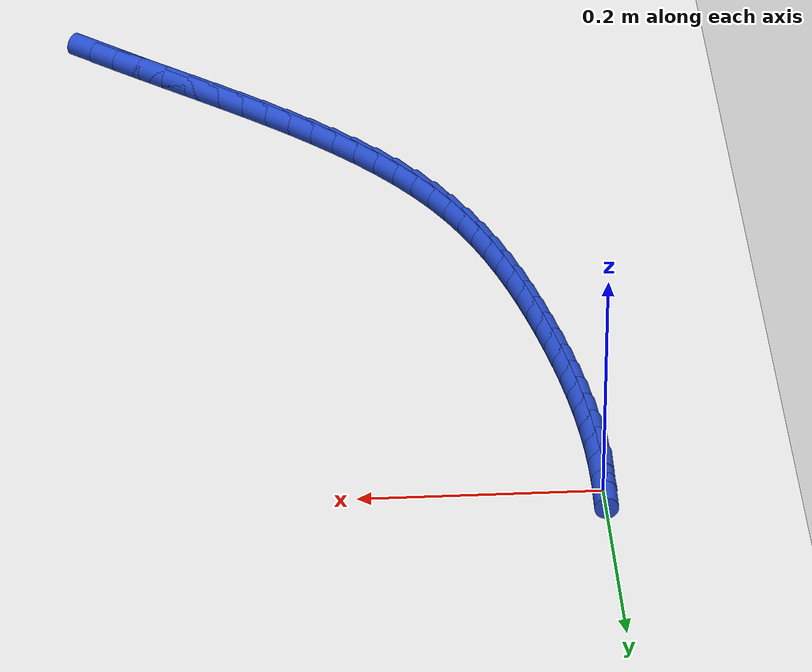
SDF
<sdf version="1.6">
 <world name="default">
  <model name="ground_plane">
   <static>1</static>
   <link name="link">
    <collision name="collision">
     <geometry><plane><normal>0 0 1</normal><size>100 100</size></plane></geometry>
     <surface><friction><ode><mu>100</mu><mu2>50</mu2></ode></friction></surface>
    </collision>
    <visual name="visual">
     <cast_shadows>0</cast_shadows>
     <geometry><plane><normal>0 0 1</normal><size>100 100</size></plane></geometry>
     <material>
      <script><uri>file://media/materials/scripts/gazebo.material</uri><name>Gazebo/WhiteGlow</name></script>
     </material>
    </visual>
   </link>
  </model>
  <model name="line">
   <link name="link_0">
    <pose>-3.122502256758253e-17 4.163336342344337e-17 0.01 0 1.57 1.5473795753118187</pose>
    <collision name="collision">
     <geometry><cylinder><radius>0.01</radius><length>0.08</length></cylinder></geometry>
    </collision>
    <visual name="visual">
     <material>
      <script><name>Gazebo/Blue</name><uri>file://media/materials/scripts/gazebo.material</uri></script>
     </material>
     <geometry><cylinder><radius>0.01</radius><length>0.08</length></cylinder></geometry>
    </visual>
   </link>
   <link name="link_237">
    <pose>0.37873400418145226 -0.706046920443959 0.01 0 1.57 -0.685440117548606</pose>
    <collision name="collision">
     <geometry><cylinder><radius>0.01</radius><length>0.08</length></cylinder></geometry>
    </collision>
    <visual name="visual">
     <material>
      <script><name>Gazebo/Blue</name><uri>file://media/materials/scripts/gazebo.material</uri></script>
     </material>
     <geometry><cylinder><radius>0.01</radius><length>0.08</length></cylinder></geometry>
    </visual>
   </link>
   <link name="link_238">
    <pose>0.35909890715028037 -0.6899913249075883 0.01 0 1.57 -0.6745439767476813</pose>
    <collision name="collision">
     <geometry><cylinder><radius>0.01</radius><length>0.08</length></cylinder></geometry>
    </collision>
    <visual name="visual">
     <material>
      <script><name>Gazebo/Blue</name><uri>file://media/materials/scripts/gazebo.material</uri></script>
     </material>
     <geometry><cylinder><radius>0.01</radius><length>0.08</length></cylinder></geometry>
    </visual>
   </link>
   <link name="link_239">
    <pose>0.3391303455874917 -0.6740229249534682 0.01 0 1.57 -0.668742053999004</pose>
    <collision name="collision">
     <geometry><cylinder><radius>0.01</radius><length>0.08</length></cylinder></geometry>
    </collision>
    <visual name="visual">
     <material>
      <script><name>Gazebo/Blue</name><uri>file://media/materials/scripts/gazebo.material</uri></script>
     </material>
     <geometry><cylinder><radius>0.01</radius><length>0.08</length></cylinder></geometry>
    </visual>
   </link>
   <link name="link_240">
    <pose>0.318945692533712 -0.6580728365964814 0.01 0 1.57 -0.6679180554532834</pose>
    <collision name="collision">
     <geometry><cylinder><radius>0.01</radius><length>0.08</length></cylinder></geometry>
    </collision>
    <visual name="visual">
     <material>
      <script><name>Gazebo/Blue</name><uri>file://media/materials/scripts/gazebo.material</uri></script>
     </material>
     <geometry><cylinder><radius>0.01</radius><length>0.08</length></cylinder></geometry>
    </visual>
   </link>
   <link name="link_241">
    <pose>0.2986632171531656 -0.6420725791832987 0.01 0 1.57 -0.6720050172778176</pose>
    <collision name="collision">
     <geometry><cylinder><radius>0.01</radius><length>0.08</length></cylinder></geometry>
    </collision>
    <visual name="visual">
     <material>
      <script><name>Gazebo/Blue</name><uri>file://media/materials/scripts/gazebo.material</uri></script>
     </material>
     <geometry><cylinder><radius>0.01</radius><length>0.08</length></cylinder></geometry>
    </visual>
   </link>
   <link name="link_242">
    <pose>0.2784011886100742 -0.6259536720605883 0.01 0 1.57 -0.6809934705254129</pose>
    <collision name="collision">
     <geometry><cylinder><radius>0.01</radius><length>0.08</length></cylinder></geometry>
    </collision>
    <visual name="visual">
     <material>
      <script><name>Gazebo/Blue</name><uri>file://media/materials/scripts/gazebo.material</uri></script>
     </material>
     <geometry><cylinder><radius>0.01</radius><length>0.08</length></cylinder></geometry>
    </visual>
   </link>
   <link name="link_243">
    <pose>0.2582778760686621 -0.6096476345750208 0.01 0 1.57 -0.6949276472716482</pose>
    <collision name="collision">
     <geometry><cylinder><radius>0.01</radius><length>0.08</length></cylinder></geometry>
    </collision>
    <visual name="visual">
     <material>
      <script><name>Gazebo/Blue</name><uri>file://media/materials/scripts/gazebo.material</uri></script>
     </material>
     <geometry><cylinder><radius>0.01</radius><length>0.08</length></cylinder></geometry>
    </visual>
   </link>
   <link name="link_244">
    <pose>0.23841154869315115 -0.5930859860732655 0.01 0 1.57 -0.7138995466185428</pose>
    <collision name="collision">
     <geometry><cylinder><radius>0.01</radius><length>0.08</length></cylinder></geometry>
    </collision>
    <visual name="visual">
     <material>
      <script><name>Gazebo/Blue</name><uri>file://media/materials/scripts/gazebo.material</uri></script>
     </material>
     <geometry><cylinder><radius>0.01</radius><length>0.08</length></cylinder></geometry>
    </visual>
   </link>
   <link name="link_245">
    <pose>0.21892047564776557 -0.5762002459019921 0.01 0 1.57 -0.738040182673189</pose>
    <collision name="collision">
     <geometry><cylinder><radius>0.01</radius><length>0.08</length></cylinder></geometry>
    </collision>
    <visual name="visual">
     <material>
      <script><name>Gazebo/Blue</name><uri>file://media/materials/scripts/gazebo.material</uri></script>
     </material>
     <geometry><cylinder><radius>0.01</radius><length>0.08</length></cylinder></geometry>
    </visual>
   </link>
   <link name="link_246">
    <pose>0.1999229260967278 -0.5589219334078704 0.01 0 1.57 -0.7675069450600549</pose>
    <collision name="collision">
     <geometry><cylinder><radius>0.01</radius><length>0.08</length></cylinder></geometry>
    </collision>
    <visual name="visual">
     <material>
      <script><name>Gazebo/Blue</name><uri>file://media/materials/scripts/gazebo.material</uri></script>
     </material>
     <geometry><cylinder><radius>0.01</radius><length>0.08</length></cylinder></geometry>
    </visual>
   </link>
   <link name="link_247">
    <pose>0.18153716920426033 -0.541182567937569 0.01 0 1.57 -0.8024657044747607</pose>
    <collision name="collision">
     <geometry><cylinder><radius>0.01</radius><length>0.08</length></cylinder></geometry>
    </collision>
    <visual name="visual">
     <material>
      <script><name>Gazebo/Blue</name><uri>file://media/materials/scripts/gazebo.material</uri></script>
     </material>
     <geometry><cylinder><radius>0.01</radius><length>0.08</length></cylinder></geometry>
    </visual>
   </link>
   <link name="link_248">
    <pose>0.16388147413458723 -0.5229136688377589 0.01 0 1.57 -0.8430662048747827</pose>
    <collision name="collision">
     <geometry><cylinder><radius>0.01</radius><length>0.08</length></cylinder></geometry>
    </collision>
    <visual name="visual">
     <material>
      <script><name>Gazebo/Blue</name><uri>file://media/materials/scripts/gazebo.material</uri></script>
     </material>
     <geometry><cylinder><radius>0.01</radius><length>0.08</length></cylinder></geometry>
    </visual>
   </link>
   <link name="link_249">
    <pose>0.14707411005193058 -0.5040467554551082 0.01 0 1.57 -0.8894096044088652</pose>
    <collision name="collision">
     <geometry><cylinder><radius>0.01</radius><length>0.08</length></cylinder></geometry>
    </collision>
    <visual name="visual">
     <material>
      <script><name>Gazebo/Blue</name><uri>file://media/materials/scripts/gazebo.material</uri></script>
     </material>
     <geometry><cylinder><radius>0.01</radius><length>0.08</length></cylinder></geometry>
    </visual>
   </link>
   <link name="link_250">
    <pose>0.13123334612051438 -0.48451334713628813 0.01 0 1.57 -0.9415080468297321</pose>
    <collision name="collision">
     <geometry><cylinder><radius>0.01</radius><length>0.08</length></cylinder></geometry>
    </collision>
    <visual name="visual">
     <material>
      <script><name>Gazebo/Blue</name><uri>file://media/materials/scripts/gazebo.material</uri></script>
     </material>
     <geometry><cylinder><radius>0.01</radius><length>0.08</length></cylinder></geometry>
    </visual>
   </link>
   <link name="link_251">
    <pose>0.11647745150456068 -0.4642449632279667 0.01 0 1.57 -0.9992058292563114</pose>
    <collision name="collision">
     <geometry><cylinder><radius>0.01</radius><length>0.08</length></cylinder></geometry>
    </collision>
    <visual name="visual">
     <material>
      <script><name>Gazebo/Blue</name><uri>file://media/materials/scripts/gazebo.material</uri></script>
     </material>
     <geometry><cylinder><radius>0.01</radius><length>0.08</length></cylinder></geometry>
    </visual>
   </link>
   <link name="link_252">
    <pose>0.10292404528011699 -0.4431736094594853 0.01 0 1.57 -1.058780307226886</pose>
    <collision name="collision">
     <geometry><cylinder><radius>0.01</radius><length>0.08</length></cylinder></geometry>
    </collision>
    <visual name="visual">
     <material>
      <script><name>Gazebo/Blue</name><uri>file://media/materials/scripts/gazebo.material</uri></script>
     </material>
     <geometry><cylinder><radius>0.01</radius><length>0.08</length></cylinder></geometry>
    </visual>
   </link>
   <link name="link_253">
    <pose>0.0906214247004763 -0.4212831567293772 0.01 0 1.57 -1.1135622587383174</pose>
    <collision name="collision">
     <geometry><cylinder><radius>0.01</radius><length>0.08</length></cylinder></geometry>
    </collision>
    <visual name="visual">
     <material>
      <script><name>Gazebo/Blue</name><uri>file://media/materials/scripts/gazebo.material</uri></script>
     </material>
     <geometry><cylinder><radius>0.01</radius><length>0.08</length></cylinder></geometry>
    </visual>
   </link>
   <link name="link_254">
    <pose>0.07948800535496342 -0.3986546507392864 0.01 0 1.57 -1.1628176639036965</pose>
    <collision name="collision">
     <geometry><cylinder><radius>0.01</radius><length>0.08</length></cylinder></geometry>
    </collision>
    <visual name="visual">
     <material>
      <script><name>Gazebo/Blue</name><uri>file://media/materials/scripts/gazebo.material</uri></script>
     </material>
     <geometry><cylinder><radius>0.01</radius><length>0.08</length></cylinder></geometry>
    </visual>
   </link>
   <link name="link_255">
    <pose>0.06942792269661087 -0.37537982129660086 0.01 0 1.57 -1.2066438580516954</pose>
    <collision name="collision">
     <geometry><cylinder><radius>0.01</radius><length>0.08</length></cylinder></geometry>
    </collision>
    <visual name="visual">
     <material>
      <script><name>Gazebo/Blue</name><uri>file://media/materials/scripts/gazebo.material</uri></script>
     </material>
     <geometry><cylinder><radius>0.01</radius><length>0.08</length></cylinder></geometry>
    </visual>
   </link>
   <link name="link_256">
    <pose>0.060345312178452404 -0.3515503982087111 0.01 0 1.57 -1.24521340294864</pose>
    <collision name="collision">
     <geometry><cylinder><radius>0.01</radius><length>0.08</length></cylinder></geometry>
    </collision>
    <visual name="visual">
     <material>
      <script><name>Gazebo/Blue</name><uri>file://media/materials/scripts/gazebo.material</uri></script>
     </material>
     <geometry><cylinder><radius>0.01</radius><length>0.08</length></cylinder></geometry>
    </visual>
   </link>
   <link name="link_257">
    <pose>0.05214430925352089 -0.32725811128300614 0.01 0 1.57 -1.2787357837856488</pose>
    <collision name="collision">
     <geometry><cylinder><radius>0.01</radius><length>0.08</length></cylinder></geometry>
    </collision>
    <visual name="visual">
     <material>
      <script><name>Gazebo/Blue</name><uri>file://media/materials/scripts/gazebo.material</uri></script>
     </material>
     <geometry><cylinder><radius>0.01</radius><length>0.08</length></cylinder></geometry>
    </visual>
   </link>
   <link name="link_258">
    <pose>0.04472904937484927 -0.3025946903268741 0.01 0 1.57 -1.3074276116221875</pose>
    <collision name="collision">
     <geometry><cylinder><radius>0.01</radius><length>0.08</length></cylinder></geometry>
    </collision>
    <visual name="visual">
     <material>
      <script><name>Gazebo/Blue</name><uri>file://media/materials/scripts/gazebo.material</uri></script>
     </material>
     <geometry><cylinder><radius>0.01</radius><length>0.08</length></cylinder></geometry>
    </visual>
   </link>
   <link name="link_259">
    <pose>0.03800366799547117 -0.2776518651477064 0.01 0 1.57 -1.331490465383474</pose>
    <collision name="collision">
     <geometry><cylinder><radius>0.01</radius><length>0.08</length></cylinder></geometry>
    </collision>
    <visual name="visual">
     <material>
      <script><name>Gazebo/Blue</name><uri>file://media/materials/scripts/gazebo.material</uri></script>
     </material>
     <geometry><cylinder><radius>0.01</radius><length>0.08</length></cylinder></geometry>
    </visual>
   </link>
   <link name="link_260">
    <pose>0.031872300568419325 -0.2525213655528905 0.01 0 1.57 -1.351097074494853</pose>
    <collision name="collision">
     <geometry><cylinder><radius>0.01</radius><length>0.08</length></cylinder></geometry>
    </collision>
    <visual name="visual">
     <material>
      <script><name>Gazebo/Blue</name><uri>file://media/materials/scripts/gazebo.material</uri></script>
     </material>
     <geometry><cylinder><radius>0.01</radius><length>0.08</length></cylinder></geometry>
    </visual>
   </link>
   <link name="link_261">
    <pose>0.02623913595579015 -0.22729488823280655 0.01 0 1.57 -1.367822472763316</pose>
    <collision name="collision">
     <geometry><cylinder><radius>0.01</radius><length>0.08</length></cylinder></geometry>
    </collision>
    <visual name="visual">
     <material>
      <script><name>Gazebo/Blue</name><uri>file://media/materials/scripts/gazebo.material</uri></script>
     </material>
     <geometry><cylinder><radius>0.01</radius><length>0.08</length></cylinder></geometry>
    </visual>
   </link>
   <link name="link_262">
    <pose>0.021042135108938174 -0.20204318903780993 0.01 0 1.57 -1.3856577391379956</pose>
    <collision name="collision">
     <geometry><cylinder><radius>0.01</radius><length>0.08</length></cylinder></geometry>
    </collision>
    <visual name="visual">
     <material>
      <script><name>Gazebo/Blue</name><uri>file://media/materials/scripts/gazebo.material</uri></script>
     </material>
     <geometry><cylinder><radius>0.01</radius><length>0.08</length></cylinder></geometry>
    </visual>
   </link>
   <link name="link_263">
    <pose>0.016310810063600256 -0.1767802563320316 0.01 0 1.57 -1.4052951174645578</pose>
    <collision name="collision">
     <geometry><cylinder><radius>0.01</radius><length>0.08</length></cylinder></geometry>
    </collision>
    <visual name="visual">
     <material>
      <script><name>Gazebo/Blue</name><uri>file://media/materials/scripts/gazebo.material</uri></script>
     </material>
     <geometry><cylinder><radius>0.01</radius><length>0.08</length></cylinder></geometry>
    </visual>
   </link>
   <link name="link_264">
    <pose>0.01209003632943536 -0.15151055215011675 0.01 0 1.57 -1.4267648347146618</pose>
    <collision name="collision">
     <geometry><cylinder><radius>0.01</radius><length>0.08</length></cylinder></geometry>
    </collision>
    <visual name="visual">
     <material>
      <script><name>Gazebo/Blue</name><uri>file://media/materials/scripts/gazebo.material</uri></script>
     </material>
     <geometry><cylinder><radius>0.01</radius><length>0.08</length></cylinder></geometry>
    </visual>
   </link>
   <link name="link_265">
    <pose>0.008424689416102965 -0.12623853852671363 0.01 0 1.57 -1.450093445454039</pose>
    <collision name="collision">
     <geometry><cylinder><radius>0.01</radius><length>0.08</length></cylinder></geometry>
    </collision>
    <visual name="visual">
     <material>
      <script><name>Gazebo/Blue</name><uri>file://media/materials/scripts/gazebo.material</uri></script>
     </material>
     <geometry><cylinder><radius>0.01</radius><length>0.08</length></cylinder></geometry>
    </visual>
   </link>
   <link name="link_266">
    <pose>0.005359644833262105 -0.10096867749646761 0.01 0 1.57 -1.4753016130011434</pose>
    <collision name="collision">
     <geometry><cylinder><radius>0.01</radius><length>0.08</length></cylinder></geometry>
    </collision>
    <visual name="visual">
     <material>
      <script><name>Gazebo/Blue</name><uri>file://media/materials/scripts/gazebo.material</uri></script>
     </material>
     <geometry><cylinder><radius>0.01</radius><length>0.08</length></cylinder></geometry>
    </visual>
   </link>
   <link name="link_267">
    <pose>0.002939778090572197 -0.07570543109402696 0.01 0 1.57 -1.5024015984859744</pose>
    <collision name="collision">
     <geometry><cylinder><radius>0.01</radius><length>0.08</length></cylinder></geometry>
    </collision>
    <visual name="visual">
     <material>
      <script><name>Gazebo/Blue</name><uri>file://media/materials/scripts/gazebo.material</uri></script>
     </material>
     <geometry><cylinder><radius>0.01</radius><length>0.08</length></cylinder></geometry>
    </visual>
   </link>
   <link name="link_268">
    <pose>0.001209964697692377 -0.05045326135403772 0.01 0 1.57 -1.5313944896757634</pose>
    <collision name="collision">
     <geometry><cylinder><radius>0.01</radius><length>0.08</length></cylinder></geometry>
    </collision>
    <visual name="visual">
     <material>
      <script><name>Gazebo/Blue</name><uri>file://media/materials/scripts/gazebo.material</uri></script>
     </material>
     <geometry><cylinder><radius>0.01</radius><length>0.08</length></cylinder></geometry>
    </visual>
   </link>
   <link name="link_269">
    <pose>0.00021508016428186706 -0.025216630311145946 0.01 0 1.57 -1.5622672352295917</pose>
    <collision name="collision">
     <geometry><cylinder><radius>0.01</radius><length>0.08</length></cylinder></geometry>
    </collision>
    <visual name="visual">
     <material>
      <script><name>Gazebo/Blue</name><uri>file://media/materials/scripts/gazebo.material</uri></script>
     </material>
     <geometry><cylinder><radius>0.01</radius><length>0.08</length></cylinder></geometry>
    </visual>
   </link>
  </model>
 </world>
</sdf>
